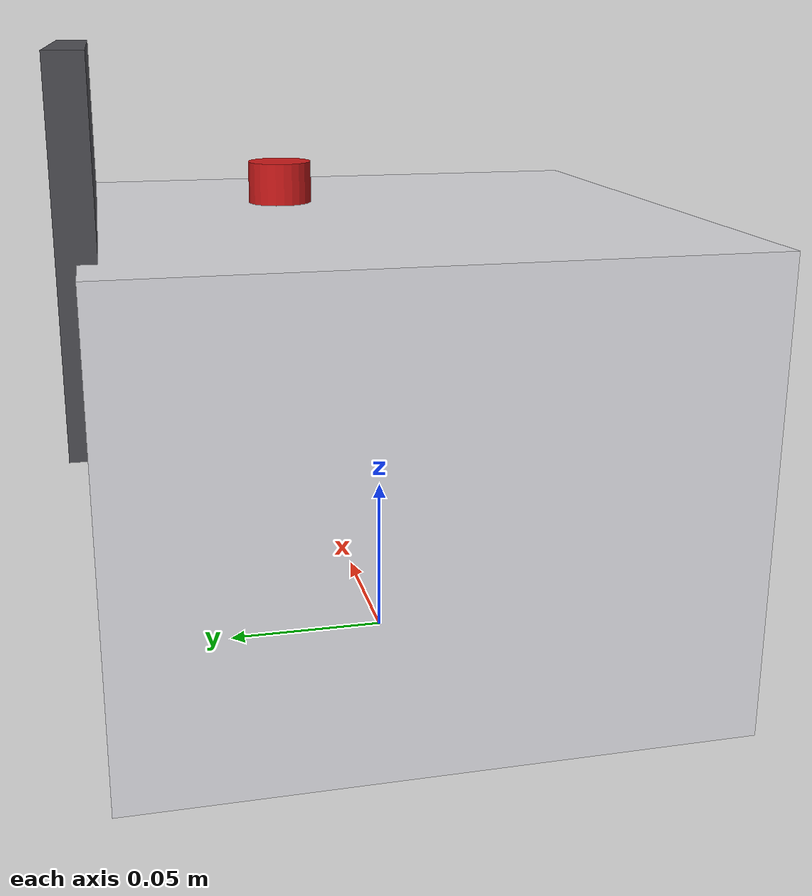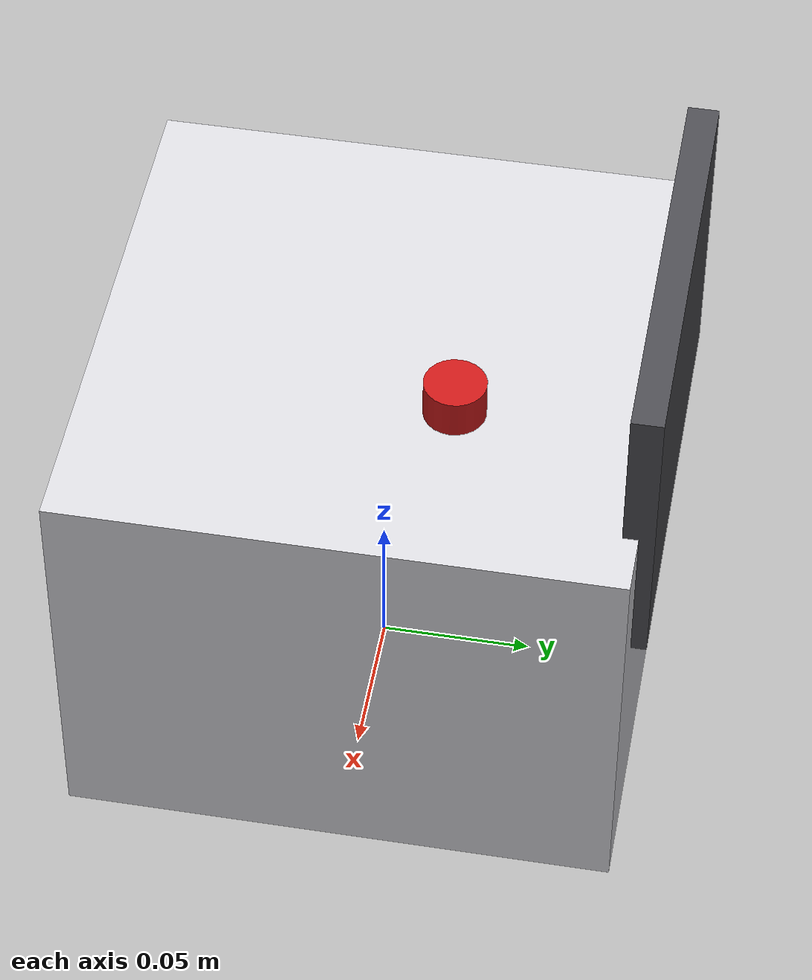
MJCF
<?xml version="1.0" encoding="utf-8"?>
<mujoco model="microbial_incubator_shaker">
  <compiler angle="radian" autolimits="true"/>
  <default>
    <default class="body"><geom contype="1" conaffinity="1"/></default>
  </default>
  <worldbody>
    <body name="base">
      <geom type="box" size="0.09 0.09 0.07" pos="0 0 0.07" rgba="0.85 0.85 0.87 1" class="body"/>
      <geom type="box" size="0.027 0.0045 0.0175" pos="-0.045 -0.081 0.10500000000000001" rgba="0.9 0.7 0.1 1" class="body"/>
      <geom type="cylinder" size="0.01 0.008" pos="0.027 0.027 0.14500000000000002" rgba="0.8 0.1 0.1 1" class="body"/>
      <body name="shaker_lid" pos="0 0.09 0.14">
        <joint name="shaker_lid_joint" type="hinge" axis="1 0 0" range="0 1.5" damping="0.3" frictionloss="0.3"/>
  <geom type="box" size="0.07 0.005 0.05" pos="0 0 0" rgba="0.3 0.3 0.32 1" class="body"/>
      </body>
    </body>
  </worldbody>
</mujoco>
